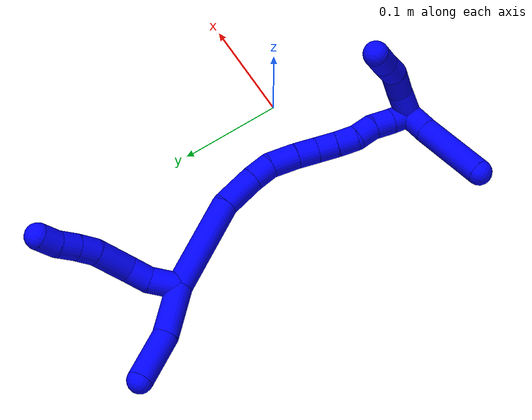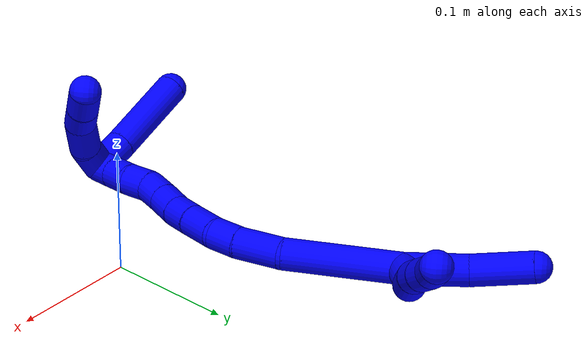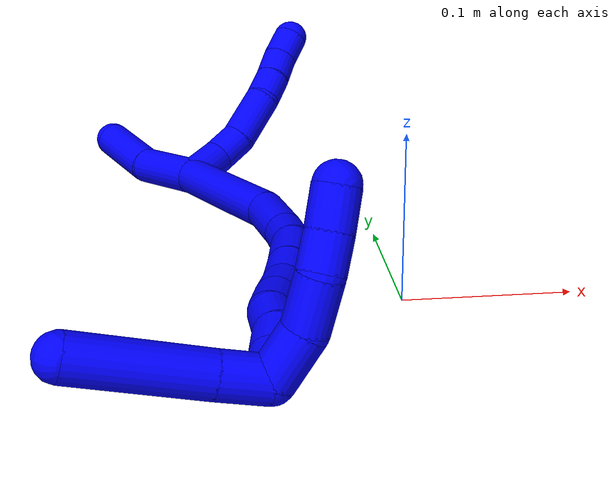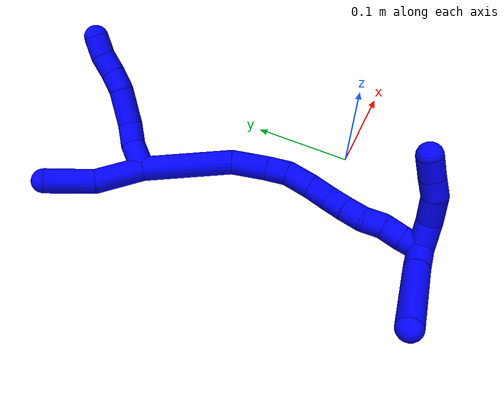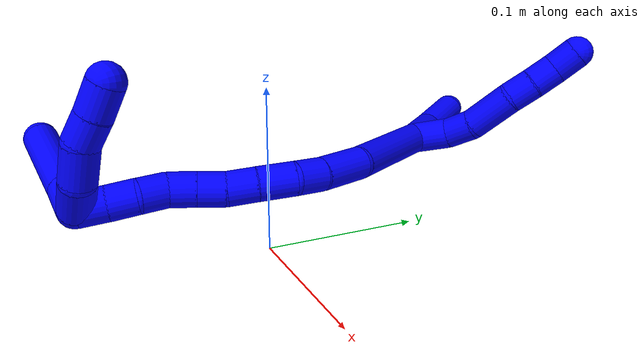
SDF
<sdf version="1.7">
 <world name="default">
  <plugin name="TubeGeneratorPlugin" filename="libtube_generator_plugin.so"/>
  <model name="photoneo_s_sensor">
   <static>1</static>
   <pose>0 0 2 1.57079 1.57079 3.14159</pose>
   <link name="link">
    <inertial><mass>0.1</mass></inertial>
    <sensor name="sensor" type="depth">
     <update_rate>30</update_rate>
     <camera>
      <horizontal_fov>1.22</horizontal_fov>
      <image><width>1920</width><height>1200</height><format>B8G8R8</format></image>
      <clip><near>0.1</near><far>4</far></clip>
      <depth_camera><output>points</output></depth_camera>
     </camera>
     <plugin name="camera_plugin" filename="libgazebo_ros_depth_camera.so">
      <baseline>0.2</baseline>
      <alwaysOn>1</alwaysOn>
      <updateRate>0.0</updateRate>
      <cameraName>camera_ir</cameraName>
      <imageTopicName>/camera/color/image_raw</imageTopicName>
      <cameraInfoTopicName>/camera/color/camera_info</cameraInfoTopicName>
      <depthImageTopicName>/camera/depth/image_raw</depthImageTopicName>
      <depthImageCameraInfoTopicName>/camera/depth/camera_info</depthImageCameraInfoTopicName>
      <pointCloudTopicName>/camera/depth/points</pointCloudTopicName>
      <frameName>fr_optical</frameName>
      <pointCloudCutoff>0.1</pointCloudCutoff>
      <pointCloudCutoffMax>2.0</pointCloudCutoffMax>
      <distortionK1>0</distortionK1>
      <distortionK2>0</distortionK2>
      <distortionK3>0</distortionK3>
      <distortionT1>0</distortionT1>
      <distortionT2>0</distortionT2>
      <CxPrime>0</CxPrime>
      <Cx>0</Cx>
      <Cy>0</Cy>
      <focalLength>0</focalLength>
      <hackBaseline>0</hackBaseline>
     </plugin>
    </sensor>
   </link>
  </model>
  <gravity>0 0 -9.8</gravity>
  <magnetic_field>6e-06 2.3e-05 -4.2e-05</magnetic_field>
  <atmosphere type="adiabatic"/>
  <physics name="default_physics" default="0" type="ode">
   <max_step_size>0.003</max_step_size>
   <real_time_factor>1</real_time_factor>
   <real_time_update_rate>1000</real_time_update_rate>
   <max_contacts>10000</max_contacts>
   <ode>
    <solver>
     <type>quick</type>
     <iters>100</iters>
     <sor>1.3</sor>
     <use_dynamic_moi_rescaling>0</use_dynamic_moi_rescaling>
    </solver>
    <constraints>
     <contact_max_correcting_vel>0</contact_max_correcting_vel>
     <contact_surface_layer>0.001</contact_surface_layer>
     <cfm>0</cfm>
     <erp>0.2</erp>
    </constraints>
   </ode>
  </physics>
  <scene><ambient>0.4 0.4 0.4 1</ambient><background>0.7 0.7 0.7 1</background><shadows>0</shadows></scene>
  <audio><device>default</device></audio>
  <spherical_coordinates>
   <surface_model>EARTH_WGS84</surface_model>
   <latitude_deg>0</latitude_deg>
   <longitude_deg>0</longitude_deg>
   <elevation>0</elevation>
   <heading_deg>0</heading_deg>
  </spherical_coordinates>
  <model name="bin">
   <static>1</static>
   <link name="bottom">
    <collision name="collision-bottom">
     <pose>0 0 -0.01 0 -0 0</pose>
     <geometry><box><size>0.8 0.6 0.02</size></box></geometry>
     <surface>
      <friction><ode><mu>100</mu><mu2>100</mu2></ode></friction>
      <contact><collide_bitmask>65535</collide_bitmask></contact>
     </surface>
    </collision>
   </link>
   <link name="west_wall">
    <collision name="collision-west_wall">
     <pose>-0.41 0 0.1 0 -0 0</pose>
     <geometry><box><size>0.02 0.6 0.2</size></box></geometry>
     <surface>
      <friction><ode><mu>100</mu><mu2>100</mu2></ode></friction>
      <contact><collide_bitmask>65535</collide_bitmask></contact>
     </surface>
    </collision>
   </link>
   <link name="east_wall">
    <collision name="collision-east_wall">
     <pose>0.41 0 0.1 0 -0 0</pose>
     <geometry><box><size>0.02 0.6 0.2</size></box></geometry>
     <surface>
      <friction><ode><mu>100</mu><mu2>100</mu2></ode></friction>
      <contact><collide_bitmask>65535</collide_bitmask></contact>
     </surface>
    </collision>
   </link>
   <link name="south_wall">
    <collision name="collision-south_wall">
     <pose>0 -0.31 0.1 0 -0 0</pose>
     <geometry><box><size>0.8 0.02 0.2</size></box></geometry>
     <surface>
      <friction><ode><mu>100</mu><mu2>100</mu2></ode></friction>
      <contact><collide_bitmask>65535</collide_bitmask></contact>
     </surface>
    </collision>
   </link>
   <link name="north_wall">
    <collision name="collision-north_wall">
     <pose>0 0.31 0.1 0 -0 0</pose>
     <geometry><box><size>0.8 0.02 0.2</size></box></geometry>
     <surface>
      <friction><ode><mu>100</mu><mu2>100</mu2></ode></friction>
      <contact><collide_bitmask>65535</collide_bitmask></contact>
     </surface>
    </collision>
   </link>
  </model>
  <model name="1">
   <static>0</static>
   <link name="1">
    <collision name="collision-cylinder-e_1_2_8">
     <pose>0.001762 0.014284 0.003054 -1.36013 0.120061 -0.097142</pose>
     <geometry><cylinder><radius>0.0125</radius><length>0.029426</length></cylinder></geometry>
     <surface>
      <friction><ode><mu>1.16</mu><mu2>1.16</mu2><slip1>0</slip1><slip2>0</slip2></ode></friction>
      <contact><ode><kp>1e+06</kp><kd>1</kd><max_vel>0</max_vel><min_depth>0.001</min_depth></ode></contact>
     </surface>
    </collision>
    <visual name="visual-cylinder-e_1_2_8">
     <pose>0.001762 0.014284 0.003054 -1.36013 0.120061 -0.097142</pose>
     <geometry><cylinder><radius>0.0125</radius><length>0.029426</length></cylinder></geometry>
     <material><ambient>0 0 1 1</ambient></material>
    </visual>
    <collision name="collision-cylinder-e_2_8_9">
     <pose>0.007363 0.039093 0.005927 -1.5881 0.349687 -0.355662</pose>
     <geometry><cylinder><radius>0.0125</radius><length>0.022408</length></cylinder></geometry>
     <surface>
      <friction><ode><mu>1.16</mu><mu2>1.16</mu2><slip1>0</slip1><slip2>0</slip2></ode></friction>
      <contact><ode><kp>1e+06</kp><kd>1</kd><max_vel>0</max_vel><min_depth>0.001</min_depth></ode></contact>
     </surface>
    </collision>
    <visual name="visual-cylinder-e_2_8_9">
     <pose>0.007363 0.039093 0.005927 -1.5881 0.349687 -0.355662</pose>
     <geometry><cylinder><radius>0.0125</radius><length>0.022408</length></cylinder></geometry>
     <material><ambient>0 0 1 1</ambient></material>
    </visual>
    <collision name="collision-cylinder-e_3_9_10">
     <pose>0.021897 0.064864 0.007191 -1.47624 0.609631 -0.557486</pose>
     <geometry><cylinder><radius>0.0125</radius><length>0.037361</length></cylinder></geometry>
     <surface>
      <friction><ode><mu>1.16</mu><mu2>1.16</mu2><slip1>0</slip1><slip2>0</slip2></ode></friction>
      <contact><ode><kp>1e+06</kp><kd>1</kd><max_vel>0</max_vel><min_depth>0.001</min_depth></ode></contact>
     </surface>
    </collision>
    <visual name="visual-cylinder-e_3_9_10">
     <pose>0.021897 0.064864 0.007191 -1.47624 0.609631 -0.557486</pose>
     <geometry><cylinder><radius>0.0125</radius><length>0.037361</length></cylinder></geometry>
     <material><ambient>0 0 1 1</ambient></material>
    </visual>
    <collision name="collision-cylinder-e_4_10_11">
     <pose>0.037733 0.088417 0.011405 -1.24905 0.530852 -0.386963</pose>
     <geometry><cylinder><radius>0.0125</radius><length>0.020305</length></cylinder></geometry>
     <surface>
      <friction><ode><mu>1.16</mu><mu2>1.16</mu2><slip1>0</slip1><slip2>0</slip2></ode></friction>
      <contact><ode><kp>1e+06</kp><kd>1</kd><max_vel>0</max_vel><min_depth>0.001</min_depth></ode></contact>
     </surface>
    </collision>
    <visual name="visual-cylinder-e_4_10_11">
     <pose>0.037733 0.088417 0.011405 -1.24905 0.530852 -0.386963</pose>
     <geometry><cylinder><radius>0.0125</radius><length>0.020305</length></cylinder></geometry>
     <material><ambient>0 0 1 1</ambient></material>
    </visual>
    <collision name="collision-cylinder-e_5_11_12">
     <pose>0.048125 0.104542 0.01769 -1.14819 0.549605 -0.360725</pose>
     <geometry><cylinder><radius>0.0125</radius><length>0.020109</length></cylinder></geometry>
     <surface>
      <friction><ode><mu>1.16</mu><mu2>1.16</mu2><slip1>0</slip1><slip2>0</slip2></ode></friction>
      <contact><ode><kp>1e+06</kp><kd>1</kd><max_vel>0</max_vel><min_depth>0.001</min_depth></ode></contact>
     </surface>
    </collision>
    <visual name="visual-cylinder-e_5_11_12">
     <pose>0.048125 0.104542 0.01769 -1.14819 0.549605 -0.360725</pose>
     <geometry><cylinder><radius>0.0125</radius><length>0.020109</length></cylinder></geometry>
     <material><ambient>0 0 1 1</ambient></material>
    </visual>
    <collision name="collision-cylinder-e_6_12_6">
     <pose>0.059346 0.120464 0.02284 -1.37185 0.625487 -0.517471</pose>
     <geometry><cylinder><radius>0.0125</radius><length>0.020392</length></cylinder></geometry>
     <surface>
      <friction><ode><mu>1.16</mu><mu2>1.16</mu2><slip1>0</slip1><slip2>0</slip2></ode></friction>
      <contact><ode><kp>1e+06</kp><kd>1</kd><max_vel>0</max_vel><min_depth>0.001</min_depth></ode></contact>
     </surface>
    </collision>
    <visual name="visual-cylinder-e_6_12_6">
     <pose>0.059346 0.120464 0.02284 -1.37185 0.625487 -0.517471</pose>
     <geometry><cylinder><radius>0.0125</radius><length>0.020392</length></cylinder></geometry>
     <material><ambient>0 0 1 1</ambient></material>
    </visual>
    <collision name="collision-cylinder-e_1_2_13">
     <pose>8.1e-05 -0.002778 0.02459 0.112485 0.003286 0.000185</pose>
     <geometry><cylinder><radius>0.0125</radius><length>0.049492</length></cylinder></geometry>
     <surface>
      <friction><ode><mu>1.16</mu><mu2>1.16</mu2><slip1>0</slip1><slip2>0</slip2></ode></friction>
      <contact><ode><kp>1e+06</kp><kd>1</kd><max_vel>0</max_vel><min_depth>0.001</min_depth></ode></contact>
     </surface>
    </collision>
    <visual name="visual-cylinder-e_1_2_13">
     <pose>8.1e-05 -0.002778 0.02459 0.112485 0.003286 0.000185</pose>
     <geometry><cylinder><radius>0.0125</radius><length>0.049492</length></cylinder></geometry>
     <material><ambient>0 0 1 1</ambient></material>
    </visual>
    <collision name="collision-cylinder-e_2_13_5">
     <pose>0.004878 -0.002956 0.073852 -0.104962 0.187826 -0.009895</pose>
     <geometry><cylinder><radius>0.0125</radius><length>0.050508</length></cylinder></geometry>
     <surface>
      <friction><ode><mu>1.16</mu><mu2>1.16</mu2><slip1>0</slip1><slip2>0</slip2></ode></friction>
      <contact><ode><kp>1e+06</kp><kd>1</kd><max_vel>0</max_vel><min_depth>0.001</min_depth></ode></contact>
     </surface>
    </collision>
    <visual name="visual-cylinder-e_2_13_5">
     <pose>0.004878 -0.002956 0.073852 -0.104962 0.187826 -0.009895</pose>
     <geometry><cylinder><radius>0.0125</radius><length>0.050508</length></cylinder></geometry>
     <material><ambient>0 0 1 1</ambient></material>
    </visual>
    <collision name="collision-cylinder-e_1_2_14">
     <pose>-0.000235 -0.00512 -0.045638 3.02986 -0.005122 -0.091528</pose>
     <geometry><cylinder><radius>0.0125</radius><length>0.091849</length></cylinder></geometry>
     <surface>
      <friction><ode><mu>1.16</mu><mu2>1.16</mu2><slip1>0</slip1><slip2>0</slip2></ode></friction>
      <contact><ode><kp>1e+06</kp><kd>1</kd><max_vel>0</max_vel><min_depth>0.001</min_depth></ode></contact>
     </surface>
    </collision>
    <visual name="visual-cylinder-e_1_2_14">
     <pose>-0.000235 -0.00512 -0.045638 3.02986 -0.005122 -0.091528</pose>
     <geometry><cylinder><radius>0.0125</radius><length>0.091849</length></cylinder></geometry>
     <material><ambient>0 0 1 1</ambient></material>
    </visual>
    <collision name="collision-cylinder-e_2_14_15">
     <pose>-0.000824 -0.017535 -0.108464 2.74026 -0.018906 -0.092882</pose>
     <geometry><cylinder><radius>0.0125</radius><length>0.037352</length></cylinder></geometry>
     <surface>
      <friction><ode><mu>1.16</mu><mu2>1.16</mu2><slip1>0</slip1><slip2>0</slip2></ode></friction>
      <contact><ode><kp>1e+06</kp><kd>1</kd><max_vel>0</max_vel><min_depth>0.001</min_depth></ode></contact>
     </surface>
    </collision>
    <visual name="visual-cylinder-e_2_14_15">
     <pose>-0.000824 -0.017535 -0.108464 2.74026 -0.018906 -0.092882</pose>
     <geometry><cylinder><radius>0.0125</radius><length>0.037352</length></cylinder></geometry>
     <material><ambient>0 0 1 1</ambient></material>
    </visual>
    <collision name="collision-cylinder-e_3_15_16">
     <pose>-0.000557 -0.030221 -0.135195 2.62726 0.056511 0.214114</pose>
     <geometry><cylinder><radius>0.0125</radius><length>0.021954</length></cylinder></geometry>
     <surface>
      <friction><ode><mu>1.16</mu><mu2>1.16</mu2><slip1>0</slip1><slip2>0</slip2></ode></friction>
      <contact><ode><kp>1e+06</kp><kd>1</kd><max_vel>0</max_vel><min_depth>0.001</min_depth></ode></contact>
     </surface>
    </collision>
    <visual name="visual-cylinder-e_3_15_16">
     <pose>-0.000557 -0.030221 -0.135195 2.62726 0.056511 0.214114</pose>
     <geometry><cylinder><radius>0.0125</radius><length>0.021954</length></cylinder></geometry>
     <material><ambient>0 0 1 1</ambient></material>
    </visual>
    <collision name="collision-cylinder-e_4_16_17">
     <pose>2e-06 -0.045465 -0.154084 2.32997 -0.004539 -0.010564</pose>
     <geometry><cylinder><radius>0.0125</radius><length>0.027164</length></cylinder></geometry>
     <surface>
      <friction><ode><mu>1.16</mu><mu2>1.16</mu2><slip1>0</slip1><slip2>0</slip2></ode></friction>
      <contact><ode><kp>1e+06</kp><kd>1</kd><max_vel>0</max_vel><min_depth>0.001</min_depth></ode></contact>
     </surface>
    </collision>
    <visual name="visual-cylinder-e_4_16_17">
     <pose>2e-06 -0.045465 -0.154084 2.32997 -0.004539 -0.010564</pose>
     <geometry><cylinder><radius>0.0125</radius><length>0.027164</length></cylinder></geometry>
     <material><ambient>0 0 1 1</ambient></material>
    </visual>
    <collision name="collision-cylinder-e_5_17_18">
     <pose>-0.000395 -0.063547 -0.170318 2.26742 -0.031189 -0.066735</pose>
     <geometry><cylinder><radius>0.0125</radius><length>0.021471</length></cylinder></geometry>
     <surface>
      <friction><ode><mu>1.16</mu><mu2>1.16</mu2><slip1>0</slip1><slip2>0</slip2></ode></friction>
      <contact><ode><kp>1e+06</kp><kd>1</kd><max_vel>0</max_vel><min_depth>0.001</min_depth></ode></contact>
     </surface>
    </collision>
    <visual name="visual-cylinder-e_5_17_18">
     <pose>-0.000395 -0.063547 -0.170318 2.26742 -0.031189 -0.066735</pose>
     <geometry><cylinder><radius>0.0125</radius><length>0.021471</length></cylinder></geometry>
     <material><ambient>0 0 1 1</ambient></material>
    </visual>
    <collision name="collision-cylinder-e_6_18_19">
     <pose>0.000466 -0.079709 -0.183238 2.22122 0.119421 0.240052</pose>
     <geometry><cylinder><radius>0.0125</radius><length>0.020077</length></cylinder></geometry>
     <surface>
      <friction><ode><mu>1.16</mu><mu2>1.16</mu2><slip1>0</slip1><slip2>0</slip2></ode></friction>
      <contact><ode><kp>1e+06</kp><kd>1</kd><max_vel>0</max_vel><min_depth>0.001</min_depth></ode></contact>
     </surface>
    </collision>
    <visual name="visual-cylinder-e_6_18_19">
     <pose>0.000466 -0.079709 -0.183238 2.22122 0.119421 0.240052</pose>
     <geometry><cylinder><radius>0.0125</radius><length>0.020077</length></cylinder></geometry>
     <material><ambient>0 0 1 1</ambient></material>
    </visual>
    <collision name="collision-cylinder-e_7_19_20">
     <pose>0.00282 -0.095281 -0.195689 2.26928 0.115494 0.246808</pose>
     <geometry><cylinder><radius>0.0125</radius><length>0.020087</length></cylinder></geometry>
     <surface>
      <friction><ode><mu>1.16</mu><mu2>1.16</mu2><slip1>0</slip1><slip2>0</slip2></ode></friction>
      <contact><ode><kp>1e+06</kp><kd>1</kd><max_vel>0</max_vel><min_depth>0.001</min_depth></ode></contact>
     </surface>
    </collision>
    <visual name="visual-cylinder-e_7_19_20">
     <pose>0.00282 -0.095281 -0.195689 2.26928 0.115494 0.246808</pose>
     <geometry><cylinder><radius>0.0125</radius><length>0.020087</length></cylinder></geometry>
     <material><ambient>0 0 1 1</ambient></material>
    </visual>
    <collision name="collision-cylinder-e_8_20_21">
     <pose>0.003775 -0.108294 -0.210559 2.57558 -0.020187 -0.069389</pose>
     <geometry><cylinder><radius>0.0125</radius><length>0.020039</length></cylinder></geometry>
     <surface>
      <friction><ode><mu>1.16</mu><mu2>1.16</mu2><slip1>0</slip1><slip2>0</slip2></ode></friction>
      <contact><ode><kp>1e+06</kp><kd>1</kd><max_vel>0</max_vel><min_depth>0.001</min_depth></ode></contact>
     </surface>
    </collision>
    <visual name="visual-cylinder-e_8_20_21">
     <pose>0.003775 -0.108294 -0.210559 2.57558 -0.020187 -0.069389</pose>
     <geometry><cylinder><radius>0.0125</radius><length>0.020039</length></cylinder></geometry>
     <material><ambient>0 0 1 1</ambient></material>
    </visual>
    <collision name="collision-cylinder-e_9_21_22">
     <pose>0.002604 -0.120989 -0.22576 2.31515 -0.096977 -0.220451</pose>
     <geometry><cylinder><radius>0.0125</radius><length>0.020008</length></cylinder></geometry>
     <surface>
      <friction><ode><mu>1.16</mu><mu2>1.16</mu2><slip1>0</slip1><slip2>0</slip2></ode></friction>
      <contact><ode><kp>1e+06</kp><kd>1</kd><max_vel>0</max_vel><min_depth>0.001</min_depth></ode></contact>
     </surface>
    </collision>
    <visual name="visual-cylinder-e_9_21_22">
     <pose>0.002604 -0.120989 -0.22576 2.31515 -0.096977 -0.220451</pose>
     <geometry><cylinder><radius>0.0125</radius><length>0.020008</length></cylinder></geometry>
     <material><ambient>0 0 1 1</ambient></material>
    </visual>
    <collision name="collision-cylinder-e_10_22_1">
     <pose>0.001096 -0.135285 -0.239654 2.36861 -0.054001 -0.132533</pose>
     <geometry><cylinder><radius>0.0125</radius><length>0.02</length></cylinder></geometry>
     <surface>
      <friction><ode><mu>1.16</mu><mu2>1.16</mu2><slip1>0</slip1><slip2>0</slip2></ode></friction>
      <contact><ode><kp>1e+06</kp><kd>1</kd><max_vel>0</max_vel><min_depth>0.001</min_depth></ode></contact>
     </surface>
    </collision>
    <visual name="visual-cylinder-e_10_22_1">
     <pose>0.001096 -0.135285 -0.239654 2.36861 -0.054001 -0.132533</pose>
     <geometry><cylinder><radius>0.0125</radius><length>0.02</length></cylinder></geometry>
     <material><ambient>0 0 1 1</ambient></material>
    </visual>
    <collision name="collision-cylinder-e_1_1_23">
     <pose>0.011683 -0.133918 -0.251466 -2.08068 0.861253 -1.32884</pose>
     <geometry><cylinder><radius>0.0125</radius><length>0.029334</length></cylinder></geometry>
     <surface>
      <friction><ode><mu>1.16</mu><mu2>1.16</mu2><slip1>0</slip1><slip2>0</slip2></ode></friction>
      <contact><ode><kp>1e+06</kp><kd>1</kd><max_vel>0</max_vel><min_depth>0.001</min_depth></ode></contact>
     </surface>
    </collision>
    <visual name="visual-cylinder-e_1_1_23">
     <pose>0.011683 -0.133918 -0.251466 -2.08068 0.861253 -1.32884</pose>
     <geometry><cylinder><radius>0.0125</radius><length>0.029334</length></cylinder></geometry>
     <material><ambient>0 0 1 1</ambient></material>
    </visual>
    <collision name="collision-cylinder-e_2_23_24">
     <pose>0.035508 -0.119903 -0.257646 -1.83195 1.13748 -1.38844</pose>
     <geometry><cylinder><radius>0.0125</radius><length>0.027982</length></cylinder></geometry>
     <surface>
      <friction><ode><mu>1.16</mu><mu2>1.16</mu2><slip1>0</slip1><slip2>0</slip2></ode></friction>
      <contact><ode><kp>1e+06</kp><kd>1</kd><max_vel>0</max_vel><min_depth>0.001</min_depth></ode></contact>
     </surface>
    </collision>
    <visual name="visual-cylinder-e_2_23_24">
     <pose>0.035508 -0.119903 -0.257646 -1.83195 1.13748 -1.38844</pose>
     <geometry><cylinder><radius>0.0125</radius><length>0.027982</length></cylinder></geometry>
     <material><ambient>0 0 1 1</ambient></material>
    </visual>
    <collision name="collision-cylinder-e_3_24_25">
     <pose>0.056565 -0.108645 -0.25773 -1.31947 0.967153 -0.77367</pose>
     <geometry><cylinder><radius>0.0125</radius><length>0.020308</length></cylinder></geometry>
     <surface>
      <friction><ode><mu>1.16</mu><mu2>1.16</mu2><slip1>0</slip1><slip2>0</slip2></ode></friction>
      <contact><ode><kp>1e+06</kp><kd>1</kd><max_vel>0</max_vel><min_depth>0.001</min_depth></ode></contact>
     </surface>
    </collision>
    <visual name="visual-cylinder-e_3_24_25">
     <pose>0.056565 -0.108645 -0.25773 -1.31947 0.967153 -0.77367</pose>
     <geometry><cylinder><radius>0.0125</radius><length>0.020308</length></cylinder></geometry>
     <material><ambient>0 0 1 1</ambient></material>
    </visual>
    <collision name="collision-cylinder-e_4_25_4">
     <pose>0.074579 -0.09761 -0.254797 -1.30251 1.04093 -0.823763</pose>
     <geometry><cylinder><radius>0.0125</radius><length>0.022377</length></cylinder></geometry>
     <surface>
      <friction><ode><mu>1.16</mu><mu2>1.16</mu2><slip1>0</slip1><slip2>0</slip2></ode></friction>
      <contact><ode><kp>1e+06</kp><kd>1</kd><max_vel>0</max_vel><min_depth>0.001</min_depth></ode></contact>
     </surface>
    </collision>
    <visual name="visual-cylinder-e_4_25_4">
     <pose>0.074579 -0.09761 -0.254797 -1.30251 1.04093 -0.823763</pose>
     <geometry><cylinder><radius>0.0125</radius><length>0.022377</length></cylinder></geometry>
     <material><ambient>0 0 1 1</ambient></material>
    </visual>
    <collision name="collision-cylinder-e_1_1_26">
     <pose>0.005105 -0.153251 -0.239961 1.01416 0.337842 0.188924</pose>
     <geometry><cylinder><radius>0.0125</radius><length>0.027447</length></cylinder></geometry>
     <surface>
      <friction><ode><mu>1.16</mu><mu2>1.16</mu2><slip1>0</slip1><slip2>0</slip2></ode></friction>
      <contact><ode><kp>1e+06</kp><kd>1</kd><max_vel>0</max_vel><min_depth>0.001</min_depth></ode></contact>
     </surface>
    </collision>
    <visual name="visual-cylinder-e_1_1_26">
     <pose>0.005105 -0.153251 -0.239961 1.01416 0.337842 0.188924</pose>
     <geometry><cylinder><radius>0.0125</radius><length>0.027447</length></cylinder></geometry>
     <material><ambient>0 0 1 1</ambient></material>
    </visual>
    <collision name="collision-cylinder-e_2_26_3">
     <pose>0.023268 -0.193457 -0.216471 1.05277 0.384734 0.225397</pose>
     <geometry><cylinder><radius>0.0125</radius><length>0.072553</length></cylinder></geometry>
     <surface>
      <friction><ode><mu>1.16</mu><mu2>1.16</mu2><slip1>0</slip1><slip2>0</slip2></ode></friction>
      <contact><ode><kp>1e+06</kp><kd>1</kd><max_vel>0</max_vel><min_depth>0.001</min_depth></ode></contact>
     </surface>
    </collision>
    <visual name="visual-cylinder-e_2_26_3">
     <pose>0.023268 -0.193457 -0.216471 1.05277 0.384734 0.225397</pose>
     <geometry><cylinder><radius>0.0125</radius><length>0.072553</length></cylinder></geometry>
     <material><ambient>0 0 1 1</ambient></material>
    </visual>
    <collision name="collision-sphere-3">
     <pose>0.036883 -0.22267 -0.199821 0 -0 0</pose>
     <geometry><sphere><radius>0.0125</radius></sphere></geometry>
     <surface>
      <friction><ode><mu>1.16</mu><mu2>1.16</mu2><slip1>0</slip1><slip2>0</slip2></ode></friction>
      <contact><ode><kp>1e+06</kp><kd>1</kd><max_vel>0</max_vel><min_depth>0.001</min_depth></ode></contact>
     </surface>
    </collision>
    <visual name="visual-sphere-3">
     <pose>0.036883 -0.22267 -0.199821 0 -0 0</pose>
     <geometry><sphere><radius>0.0125</radius></sphere></geometry>
     <material><ambient>0 0 1 1</ambient></material>
    </visual>
    <collision name="collision-sphere-26">
     <pose>0.009653 -0.164244 -0.233121 0 -0 0</pose>
     <geometry><sphere><radius>0.0125</radius></sphere></geometry>
     <surface>
      <friction><ode><mu>1.16</mu><mu2>1.16</mu2><slip1>0</slip1><slip2>0</slip2></ode></friction>
      <contact><ode><kp>1e+06</kp><kd>1</kd><max_vel>0</max_vel><min_depth>0.001</min_depth></ode></contact>
     </surface>
    </collision>
    <visual name="visual-sphere-26">
     <pose>0.009653 -0.164244 -0.233121 0 -0 0</pose>
     <geometry><sphere><radius>0.0125</radius></sphere></geometry>
     <material><ambient>0 0 1 1</ambient></material>
    </visual>
    <collision name="collision-sphere-4">
     <pose>0.084233 -0.092157 -0.253298 0 -0 0</pose>
     <geometry><sphere><radius>0.0125</radius></sphere></geometry>
     <surface>
      <friction><ode><mu>1.16</mu><mu2>1.16</mu2><slip1>0</slip1><slip2>0</slip2></ode></friction>
      <contact><ode><kp>1e+06</kp><kd>1</kd><max_vel>0</max_vel><min_depth>0.001</min_depth></ode></contact>
     </surface>
    </collision>
    <visual name="visual-sphere-4">
     <pose>0.084233 -0.092157 -0.253298 0 -0 0</pose>
     <geometry><sphere><radius>0.0125</radius></sphere></geometry>
     <material><ambient>0 0 1 1</ambient></material>
    </visual>
    <collision name="collision-sphere-25">
     <pose>0.064924 -0.103062 -0.256296 0 -0 0</pose>
     <geometry><sphere><radius>0.0125</radius></sphere></geometry>
     <surface>
      <friction><ode><mu>1.16</mu><mu2>1.16</mu2><slip1>0</slip1><slip2>0</slip2></ode></friction>
      <contact><ode><kp>1e+06</kp><kd>1</kd><max_vel>0</max_vel><min_depth>0.001</min_depth></ode></contact>
     </surface>
    </collision>
    <visual name="visual-sphere-25">
     <pose>0.064924 -0.103062 -0.256296 0 -0 0</pose>
     <geometry><sphere><radius>0.0125</radius></sphere></geometry>
     <material><ambient>0 0 1 1</ambient></material>
    </visual>
    <collision name="collision-sphere-24">
     <pose>0.048206 -0.114228 -0.259163 0 -0 0</pose>
     <geometry><sphere><radius>0.0125</radius></sphere></geometry>
     <surface>
      <friction><ode><mu>1.16</mu><mu2>1.16</mu2><slip1>0</slip1><slip2>0</slip2></ode></friction>
      <contact><ode><kp>1e+06</kp><kd>1</kd><max_vel>0</max_vel><min_depth>0.001</min_depth></ode></contact>
     </surface>
    </collision>
    <visual name="visual-sphere-24">
     <pose>0.048206 -0.114228 -0.259163 0 -0 0</pose>
     <geometry><sphere><radius>0.0125</radius></sphere></geometry>
     <material><ambient>0 0 1 1</ambient></material>
    </visual>
    <collision name="collision-sphere-23">
     <pose>0.02281 -0.125578 -0.256129 0 -0 0</pose>
     <geometry><sphere><radius>0.0125</radius></sphere></geometry>
     <surface>
      <friction><ode><mu>1.16</mu><mu2>1.16</mu2><slip1>0</slip1><slip2>0</slip2></ode></friction>
      <contact><ode><kp>1e+06</kp><kd>1</kd><max_vel>0</max_vel><min_depth>0.001</min_depth></ode></contact>
     </surface>
    </collision>
    <visual name="visual-sphere-23">
     <pose>0.02281 -0.125578 -0.256129 0 -0 0</pose>
     <geometry><sphere><radius>0.0125</radius></sphere></geometry>
     <material><ambient>0 0 1 1</ambient></material>
    </visual>
    <collision name="collision-sphere-1">
     <pose>0.000556 -0.142258 -0.246802 0 -0 0</pose>
     <geometry><sphere><radius>0.0125</radius></sphere></geometry>
     <surface>
      <friction><ode><mu>1.16</mu><mu2>1.16</mu2><slip1>0</slip1><slip2>0</slip2></ode></friction>
      <contact><ode><kp>1e+06</kp><kd>1</kd><max_vel>0</max_vel><min_depth>0.001</min_depth></ode></contact>
     </surface>
    </collision>
    <visual name="visual-sphere-1">
     <pose>0.000556 -0.142258 -0.246802 0 -0 0</pose>
     <geometry><sphere><radius>0.0125</radius></sphere></geometry>
     <material><ambient>0 0 1 1</ambient></material>
    </visual>
    <collision name="collision-sphere-22">
     <pose>0.001635 -0.128313 -0.232506 0 -0 0</pose>
     <geometry><sphere><radius>0.0125</radius></sphere></geometry>
     <surface>
      <friction><ode><mu>1.16</mu><mu2>1.16</mu2><slip1>0</slip1><slip2>0</slip2></ode></friction>
      <contact><ode><kp>1e+06</kp><kd>1</kd><max_vel>0</max_vel><min_depth>0.001</min_depth></ode></contact>
     </surface>
    </collision>
    <visual name="visual-sphere-22">
     <pose>0.001635 -0.128313 -0.232506 0 -0 0</pose>
     <geometry><sphere><radius>0.0125</radius></sphere></geometry>
     <material><ambient>0 0 1 1</ambient></material>
    </visual>
    <collision name="collision-sphere-21">
     <pose>0.003573 -0.113666 -0.219014 0 -0 0</pose>
     <geometry><sphere><radius>0.0125</radius></sphere></geometry>
     <surface>
      <friction><ode><mu>1.16</mu><mu2>1.16</mu2><slip1>0</slip1><slip2>0</slip2></ode></friction>
      <contact><ode><kp>1e+06</kp><kd>1</kd><max_vel>0</max_vel><min_depth>0.001</min_depth></ode></contact>
     </surface>
    </collision>
    <visual name="visual-sphere-21">
     <pose>0.003573 -0.113666 -0.219014 0 -0 0</pose>
     <geometry><sphere><radius>0.0125</radius></sphere></geometry>
     <material><ambient>0 0 1 1</ambient></material>
    </visual>
    <collision name="collision-sphere-12">
     <pose>0.053376 0.112361 0.021207 0 -0 0</pose>
     <geometry><sphere><radius>0.0125</radius></sphere></geometry>
     <surface>
      <friction><ode><mu>1.16</mu><mu2>1.16</mu2><slip1>0</slip1><slip2>0</slip2></ode></friction>
      <contact><ode><kp>1e+06</kp><kd>1</kd><max_vel>0</max_vel><min_depth>0.001</min_depth></ode></contact>
     </surface>
    </collision>
    <visual name="visual-sphere-12">
     <pose>0.053376 0.112361 0.021207 0 -0 0</pose>
     <geometry><sphere><radius>0.0125</radius></sphere></geometry>
     <material><ambient>0 0 1 1</ambient></material>
    </visual>
    <collision name="collision-sphere-11">
     <pose>0.042873 0.096723 0.014174 0 -0 0</pose>
     <geometry><sphere><radius>0.0125</radius></sphere></geometry>
     <surface>
      <friction><ode><mu>1.16</mu><mu2>1.16</mu2><slip1>0</slip1><slip2>0</slip2></ode></friction>
      <contact><ode><kp>1e+06</kp><kd>1</kd><max_vel>0</max_vel><min_depth>0.001</min_depth></ode></contact>
     </surface>
    </collision>
    <visual name="visual-sphere-11">
     <pose>0.042873 0.096723 0.014174 0 -0 0</pose>
     <geometry><sphere><radius>0.0125</radius></sphere></geometry>
     <material><ambient>0 0 1 1</ambient></material>
    </visual>
    <collision name="collision-sphere-10">
     <pose>0.032593 0.080111 0.008637 0 -0 0</pose>
     <geometry><sphere><radius>0.0125</radius></sphere></geometry>
     <surface>
      <friction><ode><mu>1.16</mu><mu2>1.16</mu2><slip1>0</slip1><slip2>0</slip2></ode></friction>
      <contact><ode><kp>1e+06</kp><kd>1</kd><max_vel>0</max_vel><min_depth>0.001</min_depth></ode></contact>
     </surface>
    </collision>
    <visual name="visual-sphere-10">
     <pose>0.032593 0.080111 0.008637 0 -0 0</pose>
     <geometry><sphere><radius>0.0125</radius></sphere></geometry>
     <material><ambient>0 0 1 1</ambient></material>
    </visual>
    <collision name="collision-sphere-9">
     <pose>0.011201 0.049617 0.005745 0 -0 0</pose>
     <geometry><sphere><radius>0.0125</radius></sphere></geometry>
     <surface>
      <friction><ode><mu>1.16</mu><mu2>1.16</mu2><slip1>0</slip1><slip2>0</slip2></ode></friction>
      <contact><ode><kp>1e+06</kp><kd>1</kd><max_vel>0</max_vel><min_depth>0.001</min_depth></ode></contact>
     </surface>
    </collision>
    <visual name="visual-sphere-9">
     <pose>0.011201 0.049617 0.005745 0 -0 0</pose>
     <geometry><sphere><radius>0.0125</radius></sphere></geometry>
     <material><ambient>0 0 1 1</ambient></material>
    </visual>
    <collision name="collision-sphere-2">
     <geometry><sphere><radius>0.0125</radius></sphere></geometry>
     <surface>
      <friction><ode><mu>1.16</mu><mu2>1.16</mu2><slip1>0</slip1><slip2>0</slip2></ode></friction>
      <contact><ode><kp>1e+06</kp><kd>1</kd><max_vel>0</max_vel><min_depth>0.001</min_depth></ode></contact>
     </surface>
    </collision>
    <visual name="visual-sphere-2">
     <geometry><sphere><radius>0.0125</radius></sphere></geometry>
     <material><ambient>0 0 1 1</ambient></material>
    </visual>
    <collision name="collision-sphere-19">
     <pose>0.001662 -0.087641 -0.189273 0 -0 0</pose>
     <geometry><sphere><radius>0.0125</radius></sphere></geometry>
     <surface>
      <friction><ode><mu>1.16</mu><mu2>1.16</mu2><slip1>0</slip1><slip2>0</slip2></ode></friction>
      <contact><ode><kp>1e+06</kp><kd>1</kd><max_vel>0</max_vel><min_depth>0.001</min_depth></ode></contact>
     </surface>
    </collision>
    <visual name="visual-sphere-19">
     <pose>0.001662 -0.087641 -0.189273 0 -0 0</pose>
     <geometry><sphere><radius>0.0125</radius></sphere></geometry>
     <material><ambient>0 0 1 1</ambient></material>
    </visual>
    <collision name="collision-sphere-8">
     <pose>0.003524 0.028568 0.006109 0 -0 0</pose>
     <geometry><sphere><radius>0.0125</radius></sphere></geometry>
     <surface>
      <friction><ode><mu>1.16</mu><mu2>1.16</mu2><slip1>0</slip1><slip2>0</slip2></ode></friction>
      <contact><ode><kp>1e+06</kp><kd>1</kd><max_vel>0</max_vel><min_depth>0.001</min_depth></ode></contact>
     </surface>
    </collision>
    <visual name="visual-sphere-8">
     <pose>0.003524 0.028568 0.006109 0 -0 0</pose>
     <geometry><sphere><radius>0.0125</radius></sphere></geometry>
     <material><ambient>0 0 1 1</ambient></material>
    </visual>
    <collision name="collision-sphere-6">
     <pose>0.065316 0.128566 0.024474 0 -0 0</pose>
     <geometry><sphere><radius>0.0125</radius></sphere></geometry>
     <surface>
      <friction><ode><mu>1.16</mu><mu2>1.16</mu2><slip1>0</slip1><slip2>0</slip2></ode></friction>
      <contact><ode><kp>1e+06</kp><kd>1</kd><max_vel>0</max_vel><min_depth>0.001</min_depth></ode></contact>
     </surface>
    </collision>
    <visual name="visual-sphere-6">
     <pose>0.065316 0.128566 0.024474 0 -0 0</pose>
     <geometry><sphere><radius>0.0125</radius></sphere></geometry>
     <material><ambient>0 0 1 1</ambient></material>
    </visual>
    <collision name="collision-sphere-13">
     <pose>0.000163 -0.005555 0.049179 0 -0 0</pose>
     <geometry><sphere><radius>0.0125</radius></sphere></geometry>
     <surface>
      <friction><ode><mu>1.16</mu><mu2>1.16</mu2><slip1>0</slip1><slip2>0</slip2></ode></friction>
      <contact><ode><kp>1e+06</kp><kd>1</kd><max_vel>0</max_vel><min_depth>0.001</min_depth></ode></contact>
     </surface>
    </collision>
    <visual name="visual-sphere-13">
     <pose>0.000163 -0.005555 0.049179 0 -0 0</pose>
     <geometry><sphere><radius>0.0125</radius></sphere></geometry>
     <material><ambient>0 0 1 1</ambient></material>
    </visual>
    <collision name="collision-sphere-5">
     <pose>0.009594 -0.000357 0.098526 0 -0 0</pose>
     <geometry><sphere><radius>0.0125</radius></sphere></geometry>
     <surface>
      <friction><ode><mu>1.16</mu><mu2>1.16</mu2><slip1>0</slip1><slip2>0</slip2></ode></friction>
      <contact><ode><kp>1e+06</kp><kd>1</kd><max_vel>0</max_vel><min_depth>0.001</min_depth></ode></contact>
     </surface>
    </collision>
    <visual name="visual-sphere-5">
     <pose>0.009594 -0.000357 0.098526 0 -0 0</pose>
     <geometry><sphere><radius>0.0125</radius></sphere></geometry>
     <material><ambient>0 0 1 1</ambient></material>
    </visual>
    <collision name="collision-sphere-14">
     <pose>-0.00047 -0.010241 -0.091275 0 -0 0</pose>
     <geometry><sphere><radius>0.0125</radius></sphere></geometry>
     <surface>
      <friction><ode><mu>1.16</mu><mu2>1.16</mu2><slip1>0</slip1><slip2>0</slip2></ode></friction>
      <contact><ode><kp>1e+06</kp><kd>1</kd><max_vel>0</max_vel><min_depth>0.001</min_depth></ode></contact>
     </surface>
    </collision>
    <visual name="visual-sphere-14">
     <pose>-0.00047 -0.010241 -0.091275 0 -0 0</pose>
     <geometry><sphere><radius>0.0125</radius></sphere></geometry>
     <material><ambient>0 0 1 1</ambient></material>
    </visual>
    <collision name="collision-sphere-15">
     <pose>-0.001177 -0.02483 -0.125653 0 -0 0</pose>
     <geometry><sphere><radius>0.0125</radius></sphere></geometry>
     <surface>
      <friction><ode><mu>1.16</mu><mu2>1.16</mu2><slip1>0</slip1><slip2>0</slip2></ode></friction>
      <contact><ode><kp>1e+06</kp><kd>1</kd><max_vel>0</max_vel><min_depth>0.001</min_depth></ode></contact>
     </surface>
    </collision>
    <visual name="visual-sphere-15">
     <pose>-0.001177 -0.02483 -0.125653 0 -0 0</pose>
     <geometry><sphere><radius>0.0125</radius></sphere></geometry>
     <material><ambient>0 0 1 1</ambient></material>
    </visual>
    <collision name="collision-sphere-16">
     <pose>6.3e-05 -0.035613 -0.144736 0 -0 0</pose>
     <geometry><sphere><radius>0.0125</radius></sphere></geometry>
     <surface>
      <friction><ode><mu>1.16</mu><mu2>1.16</mu2><slip1>0</slip1><slip2>0</slip2></ode></friction>
      <contact><ode><kp>1e+06</kp><kd>1</kd><max_vel>0</max_vel><min_depth>0.001</min_depth></ode></contact>
     </surface>
    </collision>
    <visual name="visual-sphere-16">
     <pose>6.3e-05 -0.035613 -0.144736 0 -0 0</pose>
     <geometry><sphere><radius>0.0125</radius></sphere></geometry>
     <material><ambient>0 0 1 1</ambient></material>
    </visual>
    <collision name="collision-sphere-17">
     <pose>-6e-05 -0.055317 -0.163433 0 -0 0</pose>
     <geometry><sphere><radius>0.0125</radius></sphere></geometry>
     <surface>
      <friction><ode><mu>1.16</mu><mu2>1.16</mu2><slip1>0</slip1><slip2>0</slip2></ode></friction>
      <contact><ode><kp>1e+06</kp><kd>1</kd><max_vel>0</max_vel><min_depth>0.001</min_depth></ode></contact>
     </surface>
    </collision>
    <visual name="visual-sphere-17">
     <pose>-6e-05 -0.055317 -0.163433 0 -0 0</pose>
     <geometry><sphere><radius>0.0125</radius></sphere></geometry>
     <material><ambient>0 0 1 1</ambient></material>
    </visual>
    <collision name="collision-sphere-18">
     <pose>-0.000729 -0.071777 -0.177203 0 -0 0</pose>
     <geometry><sphere><radius>0.0125</radius></sphere></geometry>
     <surface>
      <friction><ode><mu>1.16</mu><mu2>1.16</mu2><slip1>0</slip1><slip2>0</slip2></ode></friction>
      <contact><ode><kp>1e+06</kp><kd>1</kd><max_vel>0</max_vel><min_depth>0.001</min_depth></ode></contact>
     </surface>
    </collision>
    <visual name="visual-sphere-18">
     <pose>-0.000729 -0.071777 -0.177203 0 -0 0</pose>
     <geometry><sphere><radius>0.0125</radius></sphere></geometry>
     <material><ambient>0 0 1 1</ambient></material>
    </visual>
    <collision name="collision-sphere-20">
     <pose>0.003977 -0.102922 -0.202104 0 -0 0</pose>
     <geometry><sphere><radius>0.0125</radius></sphere></geometry>
     <surface>
      <friction><ode><mu>1.16</mu><mu2>1.16</mu2><slip1>0</slip1><slip2>0</slip2></ode></friction>
      <contact><ode><kp>1e+06</kp><kd>1</kd><max_vel>0</max_vel><min_depth>0.001</min_depth></ode></contact>
     </surface>
    </collision>
    <visual name="visual-sphere-20">
     <pose>0.003977 -0.102922 -0.202104 0 -0 0</pose>
     <geometry><sphere><radius>0.0125</radius></sphere></geometry>
     <material><ambient>0 0 1 1</ambient></material>
    </visual>
    <inertial>
     <pose>0.013806 -0.047104 -0.108686 0 -0 0</pose>
     <mass>0.75</mass>
     <inertia><ixx>0.000166</ixx><ixy>0</ixy><ixz>0</ixz><iyy>-3.7e-05</iyy><iyz>0</iyz><izz>-6e-06</izz></inertia>
    </inertial>
   </link>
   <pose>-0.117908 0.179764 0.018047 1.91543 -1.44611 -2.84094</pose>
  </model>
 </world>
</sdf>
